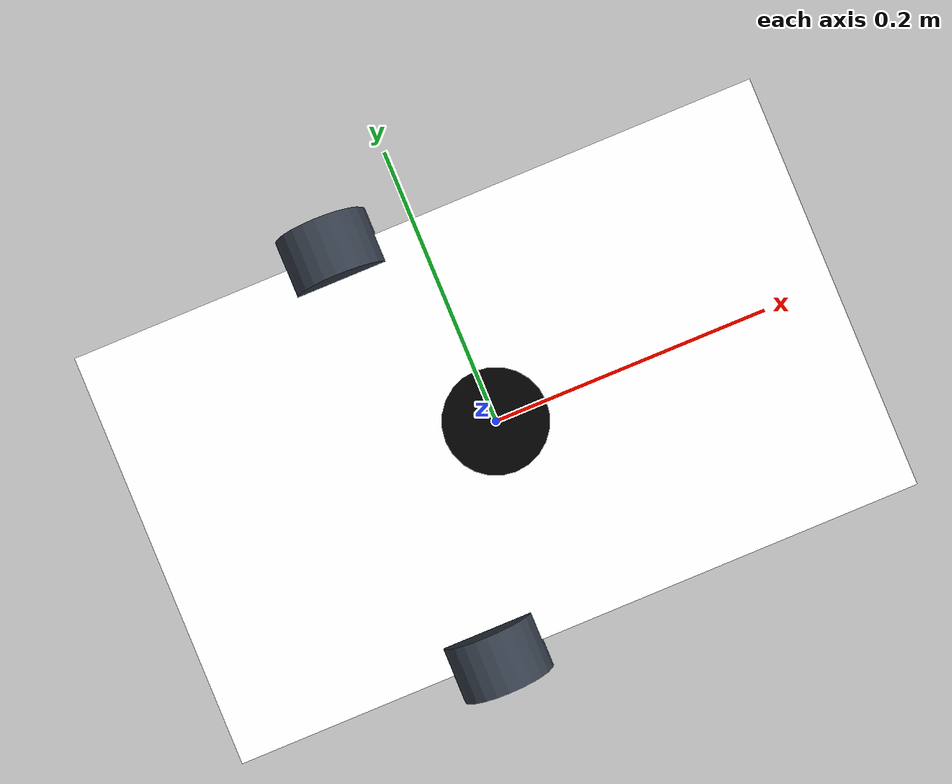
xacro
<?xml version="1.0" ?>

<robot name="m2wr" xmlns:xacro="https://www.ros.org/wiki/xacro" >

  <material name="black">
    <color rgba="0.0 0.0 0.0 1.0"/>
  </material>
  <material name="blue">
    <color rgba="0.203125 0.23828125 0.28515625 1.0"/>
  </material>
  <material name="green">
    <color rgba="0.0 0.8 0.0 1.0"/>
  </material>
  <material name="grey">
    <color rgba="0.2 0.2 0.2 1.0"/>
  </material>
  <material name="orange">
    <color rgba="1.0 0.423529411765 0.0392156862745 1.0"/>
  </material>
  <material name="brown">
    <color rgba="0.870588235294 0.811764705882 0.764705882353 1.0"/>
  </material>
  <material name="red">
    <color rgba="0.80078125 0.12890625 0.1328125 1.0"/>
  </material>
  <material name="white">
    <color rgba="1.0 1.0 1.0 1.0"/>
  </material>

  <gazebo reference="base_link">
    <material>Gazebo/Orange</material>
  </gazebo>
  <gazebo reference="link_left_wheel">
    <material>Gazebo/Blue</material>
  </gazebo>
  <gazebo reference="link_right_wheel">
    <material>Gazebo/Blue</material>
  </gazebo>

  <link name="dummy_link">
    <inertial>
      <mass value="0.001"/>
      <origin xyz="0 0 0"/>
      <inertia ixx="0.0001" ixy="0.0" ixz="0.0" iyy="0.0001" iyz="0.0" izz="0.0001"/>
    </inertial>
    <visual>
      <origin xyz="0 0 0"/>
      <geometry>
        <sphere radius="0.001"/>
      </geometry>
    </visual>
  </link>

  <!-- Add the original robot model as a child of the dummy link -->
  <joint name="dummy_joint" type="fixed">
    <origin xyz="0 0 0" rpy="0 0 0"/>
    <parent link="dummy_link"/>
    <child link="base_link"/>
  </joint>

    <link name="laser">
    <inertial>
      <origin xyz="0 0 0" rpy="0 0 0" />
      <mass value="1" />
      <!-- RANDOM INERTIA BELOW -->
      <inertia ixx="0.02" ixy="0" ixz="0" iyy="0.02" iyz="0" izz="0.02"/>
    </inertial>

    <visual>
      <origin xyz="0 0 0" rpy="0 0 0" />
      <geometry>
        <cylinder radius="0.03515" length="0.055"/>
      </geometry>
      <material name="black"/>
    </visual>

    <collision>
      <origin xyz="0 0 0" rpy="0 0 0"/>
      <geometry>
        <cylinder radius="0.03515" length="0.055"/>
      </geometry>
    </collision>
  </link>

  <joint name="joint_sensor_laser" type="fixed">
    <origin xyz="0 0 0.025" rpy="0 0 0"/>
    <parent link="base_link"/>
    <child link="laser"/>
  </joint>

  <link name="base_link">
    <!-- pose and inertial -->
    <pose>0 0 0.0 0 0 0</pose>

    <inertial>
      <mass value="5"/>
      <origin rpy="0 0 0" xyz="0 0 0.0"/>
      <inertia ixx="0.0395416666667" ixy="0" ixz="0" iyy="0.106208333333" iyz="0" izz="0.106208333333"/>
    </inertial>

    <collision name="collision_base_link">
      <geometry>
        <box size="0.5 0.3 0.01"/>
      </geometry>
    </collision>

    <visual>
      <origin rpy="0 0 0" xyz="0 0 0"/>
      <geometry>
        <box size="0.5 0.3 0.01"/>
      </geometry>
      <material name="white"/>
    </visual>

    <!-- caster front -->
    <collision name="caster_front_collision">
      <origin rpy=" 0 0 0" xyz="0.35 0 -0.02"/>
      <geometry>
        <sphere radius="0.02"/>
      </geometry>
      <surface>
        <friction>
          <ode>
            <mu>0</mu>
            <mu2>0</mu2>
            <slip1>1.0</slip1>
            <slip2>1.0</slip2>
          </ode>
        </friction>
      </surface>
    </collision>
    <visual name="caster_front_visual">
      <origin rpy=" 0 0 0" xyz="0.2 0 -0.02"/>
      <geometry>
        <sphere radius="0.02"/>
      </geometry>
      <material name="black"/>
    </visual>
  </link>

  <!-- Create wheel right -->

  <link name="link_right_wheel">
    <inertial>
      <mass value="0.2"/>
      <origin rpy="0 1.5707 1.5707" xyz="0 0 0"/>
      <inertia ixx="0.00052666666" ixy="0" ixz="0" iyy="0.00052666666" iyz="0" izz="0.001"/>
    </inertial>

    <collision name="link_right_wheel_collision">
      <origin rpy="0 1.5707 1.5707" xyz="0 0 0" />
      <geometry>
        <cylinder length="0.04" radius="0.033"/>
      </geometry>
    </collision>

    <visual name="link_right_wheel_visual">
      <origin rpy="0 1.5707 1.5707" xyz="0 0 0"/>
      <geometry>
        <cylinder length="0.04" radius="0.033"/>
      </geometry>
      <material name="blue"/>
    </visual>

  </link>

  <!--   Joint for right wheel  -->
  <joint name="joint_right_wheel" type="continuous">
    <origin rpy="0 0 0" xyz="-0.060325 0.15 0"/>
    <child link="link_right_wheel" />
    <parent link="base_link"/>
    <axis rpy="0 0 0" xyz="0 1 0"/>
    <limit effort="10000" velocity="1000"/>
    <joint_properties damping="1.0" friction="1.0" />
  </joint>

  <!-- Left Wheel link -->

  <link name="link_left_wheel">
    <inertial>
      <mass value="0.2"/>
      <origin rpy="0 1.5707 1.5707" xyz="0 0 0"/>
      <inertia ixx="0.00052666666" ixy="0" ixz="0" iyy="0.00052666666" iyz="0" izz="0.001"/>
    </inertial>

    <collision name="link_left_wheel_collision">
      <origin rpy="0 1.5707 1.5707" xyz="0 0 0" />
      <geometry>
        <cylinder length="0.04" radius="0.033"/>
      </geometry>
    </collision>

    <visual name="link_left_wheel_visual">
      <origin rpy="0 1.5707 1.5707" xyz="0 0 0"/>
      <geometry>
        <cylinder length="0.04" radius="0.033"/>
      </geometry>
      <material name="blue"/>
    </visual>

  </link>

  <!--   Joint for right wheel  -->
  <joint name="joint_left_wheel" type="continuous">
    <origin rpy="0 0 0" xyz="-0.060325 -0.15 0"/>
    <child link="link_left_wheel" />
    <parent link="base_link"/>
    <axis rpy="0 0 0" xyz="0 1 0"/>
    <limit effort="10000" velocity="1000"/>
    <joint_properties damping="1.0" friction="1.0" />
  </joint>

  <link name="base_footprint"/>

  <joint name="base_joint" type="fixed">
    <parent link="base_link"/>
    <child link="base_footprint"/>
    <origin xyz="0.0 0.0 -0.033" rpy="0 0 0"/>
  </joint>

</robot>
